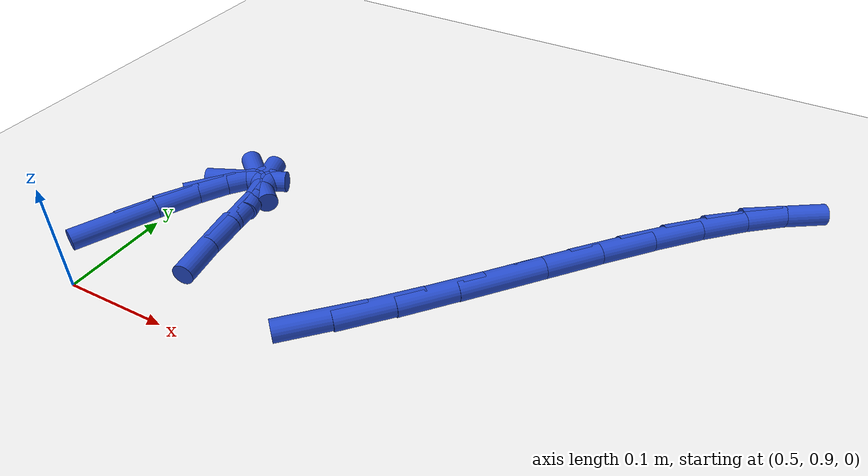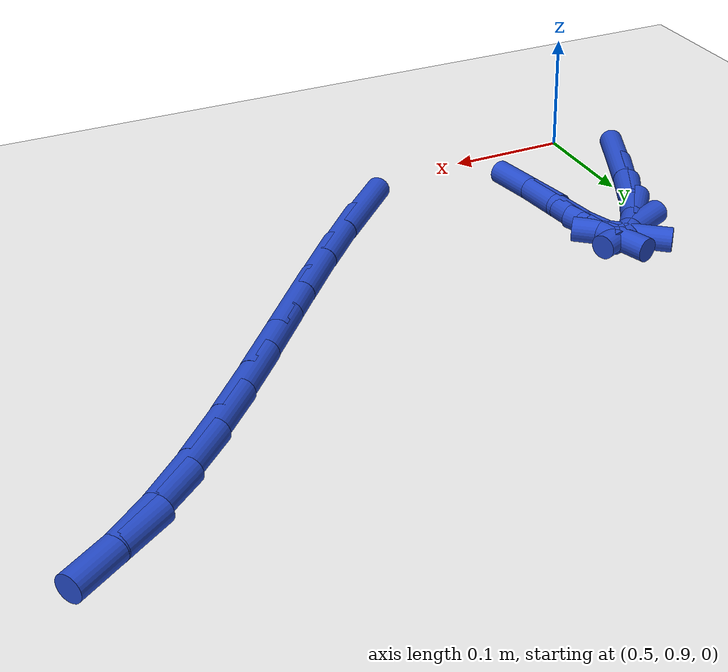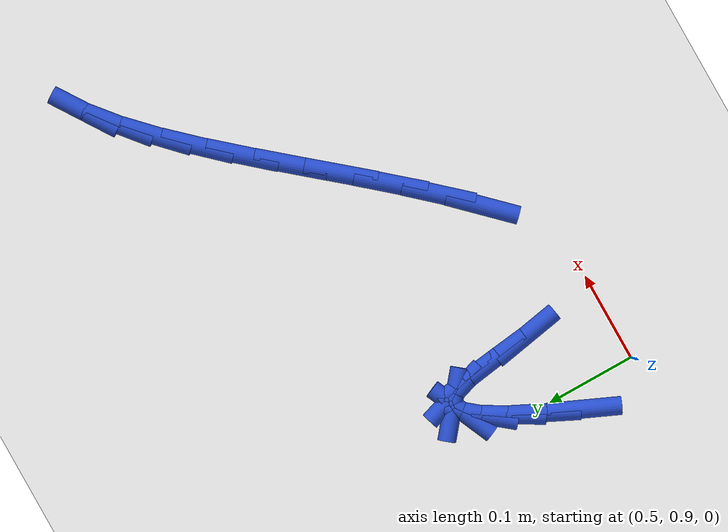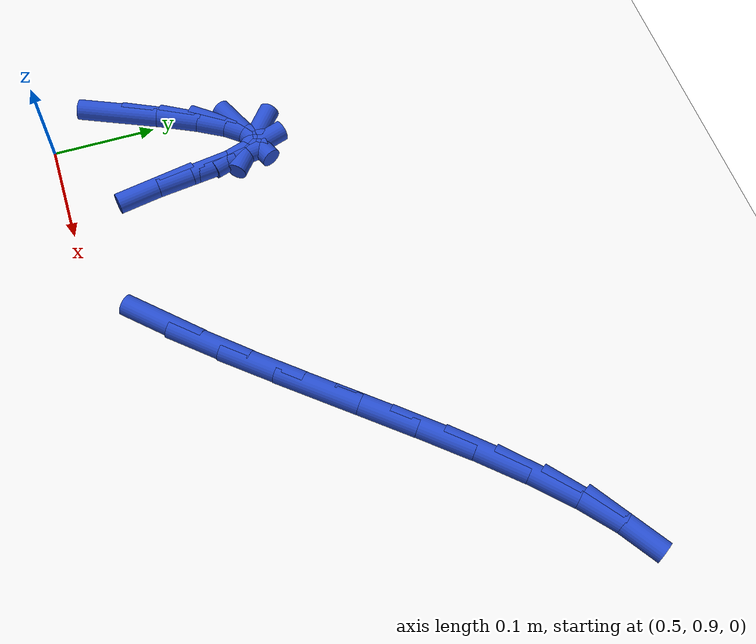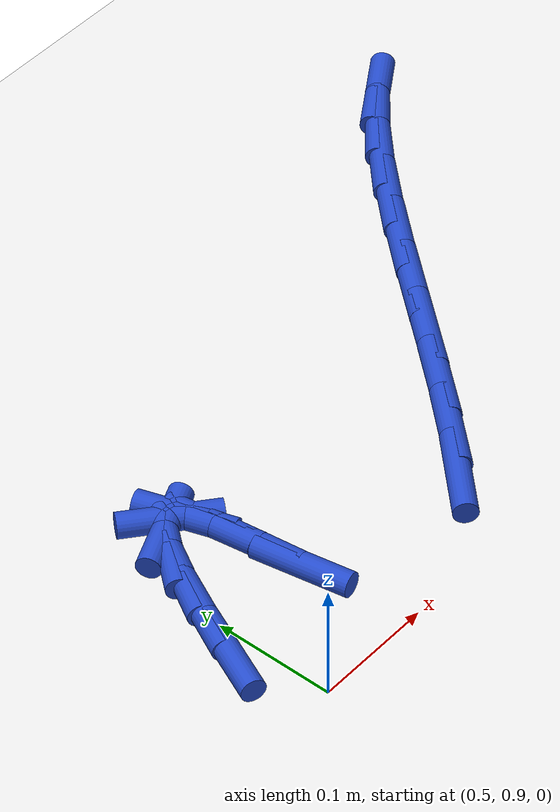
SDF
<sdf version="1.6">
 <world name="default">
  <model name="ground_plane">
   <static>1</static>
   <link name="link">
    <collision name="collision">
     <geometry><plane><normal>0 0 1</normal><size>100 100</size></plane></geometry>
     <surface><friction><ode><mu>100</mu><mu2>50</mu2></ode></friction></surface>
    </collision>
    <visual name="visual">
     <cast_shadows>0</cast_shadows>
     <geometry><plane><normal>0 0 1</normal><size>100 100</size></plane></geometry>
     <material>
      <script><uri>file://media/materials/scripts/gazebo.material</uri><name>Gazebo/WhiteGlow</name></script>
     </material>
    </visual>
   </link>
  </model>
  <model name="line">
   <link name="link_26">
    <pose>0.4771242288105931 0.9712403680547333 0.01 0 1.57 1.151283033310312</pose>
    <collision name="collision">
     <geometry><cylinder><radius>0.01</radius><length>0.08</length></cylinder></geometry>
    </collision>
    <visual name="visual">
     <material>
      <script><name>Gazebo/Blue</name><uri>file://media/materials/scripts/gazebo.material</uri></script>
     </material>
     <geometry><cylinder><radius>0.01</radius><length>0.08</length></cylinder></geometry>
    </visual>
   </link>
   <link name="link_27">
    <pose>0.49504839677492163 1.0114300853279914 0.01 0 1.57 1.1162351329151354</pose>
    <collision name="collision">
     <geometry><cylinder><radius>0.01</radius><length>0.08</length></cylinder></geometry>
    </collision>
    <visual name="visual">
     <material>
      <script><name>Gazebo/Blue</name><uri>file://media/materials/scripts/gazebo.material</uri></script>
     </material>
     <geometry><cylinder><radius>0.01</radius><length>0.08</length></cylinder></geometry>
    </visual>
   </link>
   <link name="link_28">
    <pose>0.5114001403715012 1.044890237745462 0.01 0 1.57 1.0458381003610515</pose>
    <collision name="collision">
     <geometry><cylinder><radius>0.01</radius><length>0.08</length></cylinder></geometry>
    </collision>
    <visual name="visual">
     <material>
      <script><name>Gazebo/Blue</name><uri>file://media/materials/scripts/gazebo.material</uri></script>
     </material>
     <geometry><cylinder><radius>0.01</radius><length>0.08</length></cylinder></geometry>
    </visual>
   </link>
   <link name="link_29">
    <pose>0.5260751067350107 1.0702284129140827 0.01 0 1.57 0.8870725300361593</pose>
    <collision name="collision">
     <geometry><cylinder><radius>0.01</radius><length>0.08</length></cylinder></geometry>
    </collision>
    <visual name="visual">
     <material>
      <script><name>Gazebo/Blue</name><uri>file://media/materials/scripts/gazebo.material</uri></script>
     </material>
     <geometry><cylinder><radius>0.01</radius><length>0.08</length></cylinder></geometry>
    </visual>
   </link>
   <link name="link_30">
    <pose>0.5389689430001293 1.0860521984407911 0.01 0 1.57 0.4200723354413961</pose>
    <collision name="collision">
     <geometry><cylinder><radius>0.01</radius><length>0.08</length></cylinder></geometry>
    </collision>
    <visual name="visual">
     <material>
      <script><name>Gazebo/Blue</name><uri>file://media/materials/scripts/gazebo.material</uri></script>
     </material>
     <geometry><cylinder><radius>0.01</radius><length>0.08</length></cylinder></geometry>
    </visual>
   </link>
   <link name="link_31">
    <pose>0.549977296301536 1.0909691819325247 0.01 0 1.57 -0.6859582128199114</pose>
    <collision name="collision">
     <geometry><cylinder><radius>0.01</radius><length>0.08</length></cylinder></geometry>
    </collision>
    <visual name="visual">
     <material>
      <script><name>Gazebo/Blue</name><uri>file://media/materials/scripts/gazebo.material</uri></script>
     </material>
     <geometry><cylinder><radius>0.01</radius><length>0.08</length></cylinder></geometry>
    </visual>
   </link>
   <link name="link_32">
    <pose>0.5589958137739099 1.0835869509962204 0.01 0 1.57 -1.2533304167303803</pose>
    <collision name="collision">
     <geometry><cylinder><radius>0.01</radius><length>0.08</length></cylinder></geometry>
    </collision>
    <visual name="visual">
     <material>
      <script><name>Gazebo/Blue</name><uri>file://media/materials/scripts/gazebo.material</uri></script>
     </material>
     <geometry><cylinder><radius>0.01</radius><length>0.08</length></cylinder></geometry>
    </visual>
   </link>
   <link name="link_33">
    <pose>0.5659201863913298 1.062513283318571 0.01 0 1.57 -1.422246513620611</pose>
    <collision name="collision">
     <geometry><cylinder><radius>0.01</radius><length>0.08</length></cylinder></geometry>
    </collision>
    <visual name="visual">
     <material>
      <script><name>Gazebo/Blue</name><uri>file://media/materials/scripts/gazebo.material</uri></script>
     </material>
     <geometry><cylinder><radius>0.01</radius><length>0.08</length></cylinder></geometry>
    </visual>
   </link>
   <link name="link_34">
    <pose>0.5710616065682401 1.028157496120216 0.01 0 1.57 -1.447030316904505</pose>
    <collision name="collision">
     <geometry><cylinder><radius>0.01</radius><length>0.08</length></cylinder></geometry>
    </collision>
    <visual name="visual">
     <material>
      <script><name>Gazebo/Blue</name><uri>file://media/materials/scripts/gazebo.material</uri></script>
     </material>
     <geometry><cylinder><radius>0.01</radius><length>0.08</length></cylinder></geometry>
    </visual>
   </link>
   <link name="link_35">
    <pose>0.5761640891620258 0.9871413670980163 0.01 0 1.57 -1.3935032936280507</pose>
    <collision name="collision">
     <geometry><cylinder><radius>0.01</radius><length>0.08</length></cylinder></geometry>
    </collision>
    <visual name="visual">
     <material>
      <script><name>Gazebo/Blue</name><uri>file://media/materials/scripts/gazebo.material</uri></script>
     </material>
     <geometry><cylinder><radius>0.01</radius><length>0.08</length></cylinder></geometry>
    </visual>
   </link>
   <link name="link_42">
    <pose>0.7197603056648234 0.9593012805072337 0.01 0 1.57 0.7994895696235196</pose>
    <collision name="collision">
     <geometry><cylinder><radius>0.01</radius><length>0.08</length></cylinder></geometry>
    </collision>
    <visual name="visual">
     <material>
      <script><name>Gazebo/Blue</name><uri>file://media/materials/scripts/gazebo.material</uri></script>
     </material>
     <geometry><cylinder><radius>0.01</radius><length>0.08</length></cylinder></geometry>
    </visual>
   </link>
   <link name="link_43">
    <pose>0.753626936355142 0.9941360749705783 0.01 0 1.57 0.840215822517861</pose>
    <collision name="collision">
     <geometry><cylinder><radius>0.01</radius><length>0.08</length></cylinder></geometry>
    </collision>
    <visual name="visual">
     <material>
      <script><name>Gazebo/Blue</name><uri>file://media/materials/scripts/gazebo.material</uri></script>
     </material>
     <geometry><cylinder><radius>0.01</radius><length>0.08</length></cylinder></geometry>
    </visual>
   </link>
   <link name="link_44">
    <pose>0.7886352500969818 1.0332094458631034 0.01 0 1.57 0.8631707522730333</pose>
    <collision name="collision">
     <geometry><cylinder><radius>0.01</radius><length>0.08</length></cylinder></geometry>
    </collision>
    <visual name="visual">
     <material>
      <script><name>Gazebo/Blue</name><uri>file://media/materials/scripts/gazebo.material</uri></script>
     </material>
     <geometry><cylinder><radius>0.01</radius><length>0.08</length></cylinder></geometry>
    </visual>
   </link>
   <link name="link_45">
    <pose>0.8240164071325886 1.0745711572648853 0.01 0 1.57 0.8727369584874677</pose>
    <collision name="collision">
     <geometry><cylinder><radius>0.01</radius><length>0.08</length></cylinder></geometry>
    </collision>
    <visual name="visual">
     <material>
      <script><name>Gazebo/Blue</name><uri>file://media/materials/scripts/gazebo.material</uri></script>
     </material>
     <geometry><cylinder><radius>0.01</radius><length>0.08</length></cylinder></geometry>
    </visual>
   </link>
   <link name="link_46">
    <pose>0.8590015677042075 1.1162709732559999 0.01 0 1.57 0.8700014937404306</pose>
    <collision name="collision">
     <geometry><cylinder><radius>0.01</radius><length>0.08</length></cylinder></geometry>
    </collision>
    <visual name="visual">
     <material>
      <script><name>Gazebo/Blue</name><uri>file://media/materials/scripts/gazebo.material</uri></script>
     </material>
     <geometry><cylinder><radius>0.01</radius><length>0.08</length></cylinder></geometry>
    </visual>
   </link>
   <link name="link_47">
    <pose>0.892826792142787 1.1563649742035496 0.01 0 1.57 0.8538636086401972</pose>
    <collision name="collision">
     <geometry><cylinder><radius>0.01</radius><length>0.08</length></cylinder></geometry>
    </collision>
    <visual name="visual">
     <material>
      <script><name>Gazebo/Blue</name><uri>file://media/materials/scripts/gazebo.material</uri></script>
     </material>
     <geometry><cylinder><radius>0.01</radius><length>0.08</length></cylinder></geometry>
    </visual>
   </link>
   <link name="link_48">
    <pose>0.9251111574946207 1.193402954702385 0.01 0 1.57 0.8219964225265598</pose>
    <collision name="collision">
     <geometry><cylinder><radius>0.01</radius><length>0.08</length></cylinder></geometry>
    </collision>
    <visual name="visual">
     <material>
      <script><name>Gazebo/Blue</name><uri>file://media/materials/scripts/gazebo.material</uri></script>
     </material>
     <geometry><cylinder><radius>0.01</radius><length>0.08</length></cylinder></geometry>
    </visual>
   </link>
   <link name="link_49">
    <pose>0.956125192846392 1.2267744406910595 0.01 0 1.57 0.7701868398920402</pose>
    <collision name="collision">
     <geometry><cylinder><radius>0.01</radius><length>0.08</length></cylinder></geometry>
    </collision>
    <visual name="visual">
     <material>
      <script><name>Gazebo/Blue</name><uri>file://media/materials/scripts/gazebo.material</uri></script>
     </material>
     <geometry><cylinder><radius>0.01</radius><length>0.08</length></cylinder></geometry>
    </visual>
   </link>
   <link name="link_50">
    <pose>0.9862028090315613 1.2559506581199253 0.01 0 1.57 0.6925234191504174</pose>
    <collision name="collision">
     <geometry><cylinder><radius>0.01</radius><length>0.08</length></cylinder></geometry>
    </collision>
    <visual name="visual">
     <material>
      <script><name>Gazebo/Blue</name><uri>file://media/materials/scripts/gazebo.material</uri></script>
     </material>
     <geometry><cylinder><radius>0.01</radius><length>0.08</length></cylinder></geometry>
    </visual>
   </link>
   <link name="link_51">
    <pose>1.0156779168835892 1.2804028329393355 0.01 0 1.57 0.5815358030604832</pose>
    <collision name="collision">
     <geometry><cylinder><radius>0.01</radius><length>0.08</length></cylinder></geometry>
    </collision>
    <visual name="visual">
     <material>
      <script><name>Gazebo/Blue</name><uri>file://media/materials/scripts/gazebo.material</uri></script>
     </material>
     <geometry><cylinder><radius>0.01</radius><length>0.08</length></cylinder></geometry>
    </visual>
   </link>
  </model>
 </world>
</sdf>
